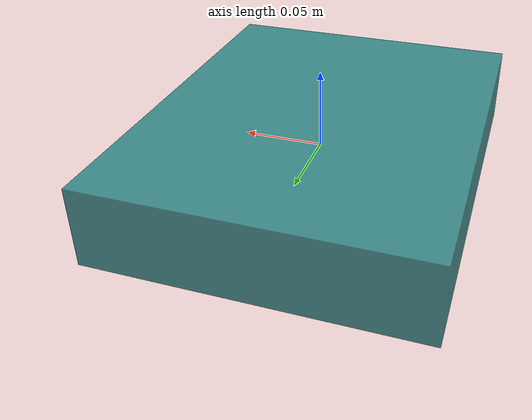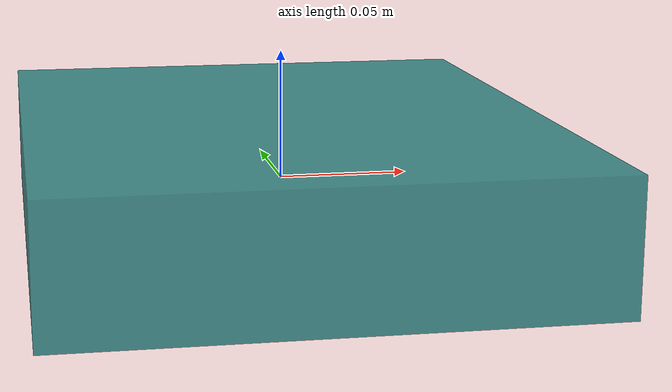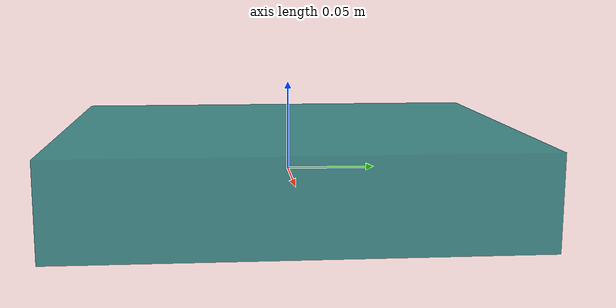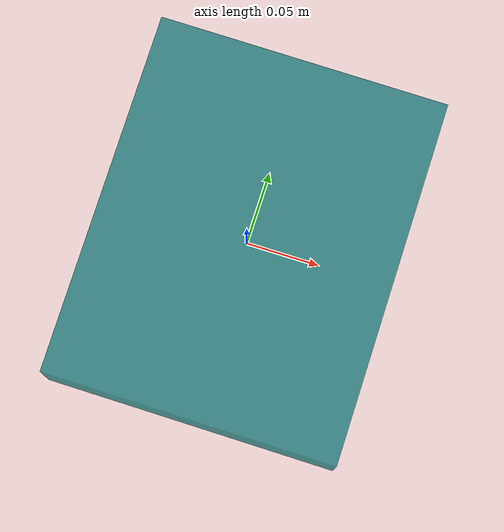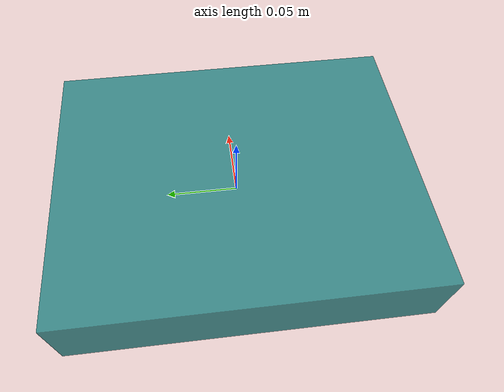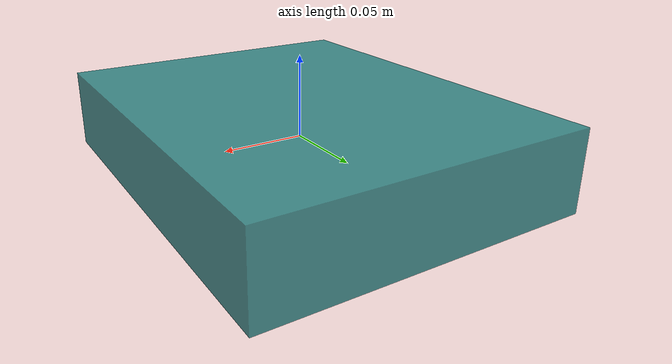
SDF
<?xml version="1.0"?>
<sdf version="1.7">

  <!-- world->ghost_body_y->ghost_body_z_sphere-->
  <model name="simple_cuboid_1m">
    <!-- The model for a solid box of uniform density. -->
    <link name="box">
      <inertial>
        <mass>0.1</mass>
        <inertia>
          <ixx>0.0005416666666666666</ixx>
          <ixy>0</ixy>
          <ixz>0</ixz>
          <iyy>0.00035416666666666675</iyy>
          <iyz>0</iyz>
          <izz>0.0008541666666666667</izz>
        </inertia>
      </inertial>

      <collision name="boxsphere11">
        <pose>0.075 -0.1 0 0 0 0</pose>
        <geometry>
          <sphere>
            <radius> 0.025 </radius>
          </sphere>
        </geometry>
      </collision>

      <collision name="boxsphere12">
        <pose>0.025 -0.1 0 0 0 0</pose>
        <geometry>
          <sphere>
            <radius> 0.025 </radius>
          </sphere>
        </geometry>
      </collision>

      <collision name="boxsphere13">
        <pose>-0.025 -0.1 0 0 0 0</pose>
        <geometry>
          <sphere>
            <radius> 0.025 </radius>
          </sphere>
        </geometry>
      </collision>

      <collision name="boxsphere14">
        <pose>-0.075 -0.1 0 0 0 0</pose>
        <geometry>
          <sphere>
            <radius> 0.025 </radius>
          </sphere>
        </geometry>
      </collision>

      <collision name="boxsphere21">
        <pose>0.075 -0.05 0 0 0 0</pose>
        <geometry>
          <sphere>
            <radius> 0.025 </radius>
          </sphere>
        </geometry>
      </collision>

      <collision name="boxsphere22">
        <pose>0.025 -0.05 0 0 0 0</pose>
        <geometry>
          <sphere>
            <radius> 0.025 </radius>
          </sphere>
        </geometry>
      </collision>

      <collision name="boxsphere23">
        <pose>-0.025 -0.05 0 0 0 0</pose>
        <geometry>
          <sphere>
            <radius> 0.025 </radius>
          </sphere>
        </geometry>
      </collision>

      <collision name="boxsphere24">
        <pose>-0.075 -0.05 0 0 0 0</pose>
        <geometry>
          <sphere>
            <radius> 0.025 </radius>
          </sphere>
        </geometry>
      </collision>

      <collision name="boxsphere31">
        <pose>0.075 0.0 0 0 0 0</pose>
        <geometry>
          <sphere>
            <radius> 0.025 </radius>
          </sphere>
        </geometry>
      </collision>

      <collision name="boxsphere32">
        <pose>0.025 0.0 0 0 0 0</pose>
        <geometry>
          <sphere>
            <radius> 0.025 </radius>
          </sphere>
        </geometry>
      </collision>

      <collision name="boxsphere33">
        <pose>-0.025 0.0 0 0 0 0</pose>
        <geometry>
          <sphere>
            <radius> 0.025 </radius>
          </sphere>
        </geometry>
      </collision>

      <collision name="boxsphere34">
        <pose>-0.075 0.0 0 0 0 0</pose>
        <geometry>
          <sphere>
            <radius> 0.025 </radius>
          </sphere>
        </geometry>
      </collision>

      <collision name="boxsphere41">
        <pose>0.075 0.05 0 0 0 0</pose>
        <geometry>
          <sphere>
            <radius> 0.025 </radius>
          </sphere>
        </geometry>
      </collision>

      <collision name="boxsphere42">
        <pose>0.025 0.05 0 0 0 0</pose>
        <geometry>
          <sphere>
            <radius> 0.025 </radius>
          </sphere>
        </geometry>
      </collision>

      <collision name="boxsphere43">
        <pose>-0.025 0.05 0 0 0 0</pose>
        <geometry>
          <sphere>
            <radius> 0.025 </radius>
          </sphere>
        </geometry>
      </collision>

      <collision name="boxsphere44">
        <pose>-0.075 0.05 0 0 0 0</pose>
        <geometry>
          <sphere>
            <radius> 0.025 </radius>
          </sphere>
        </geometry>
      </collision>

      <collision name="boxsphere51">
        <pose>0.075 0.1 0 0 0 0</pose>
        <geometry>
          <sphere>
            <radius> 0.025 </radius>
          </sphere>
        </geometry>
      </collision>

      <collision name="boxsphere52">
        <pose>0.025 0.1 0 0 0 0</pose>
        <geometry>
          <sphere>
            <radius> 0.025 </radius>
          </sphere>
        </geometry>
      </collision>

      <collision name="boxsphere53">
        <pose>-0.025 0.1 0 0 0 0</pose>
        <geometry>
          <sphere>
            <radius> 0.025 </radius>
          </sphere>
        </geometry>
      </collision>

      <collision name="boxsphere54">
        <pose>-0.075 0.1 0 0 0 0</pose>
        <geometry>
          <sphere>
            <radius> 0.025 </radius>
          </sphere>
        </geometry>
      </collision>

      <visual name="box_visual">
        <geometry>
          <box>
            <size>0.2 0.25 0.05</size>
          </box>
        </geometry>
        <material>
          <diffuse>0.1 0.5 0.5 0.8</diffuse>
        </material>
      </visual>
    </link>
  </model>
</sdf>
